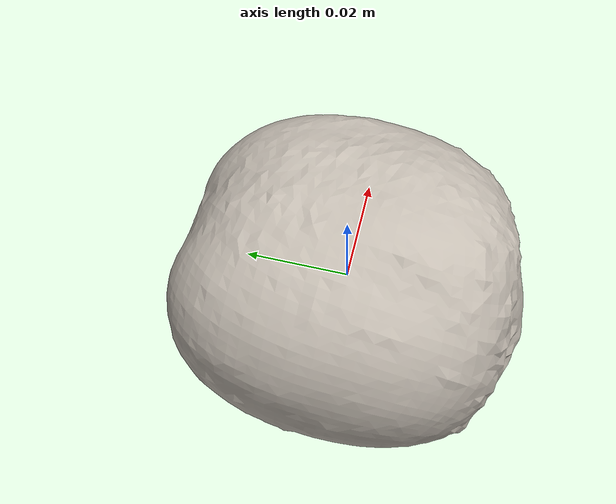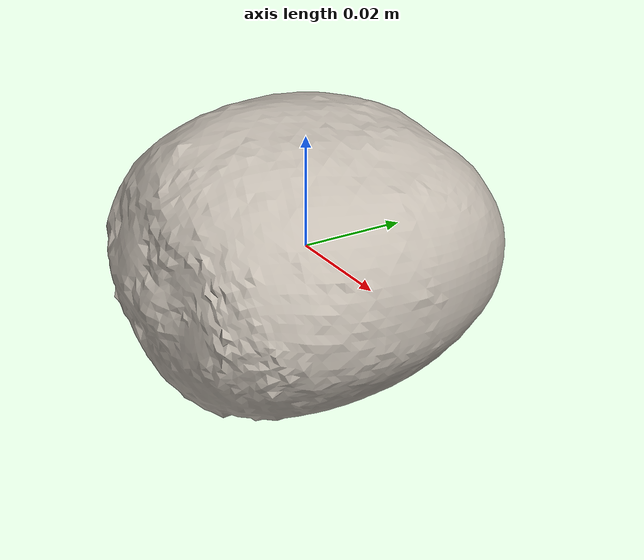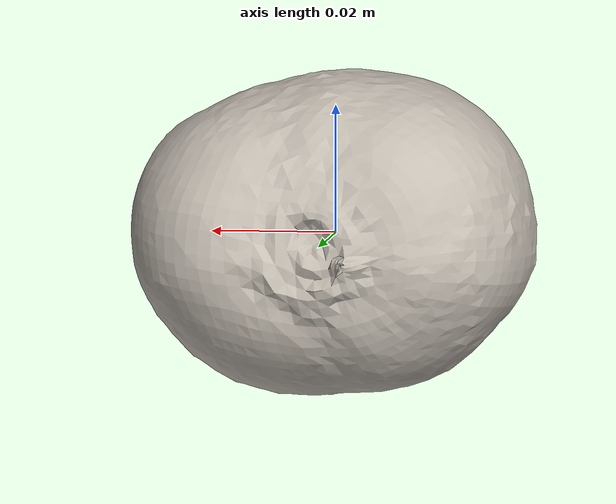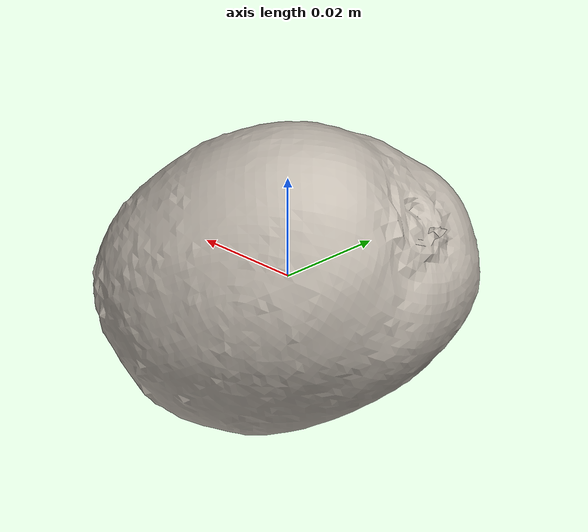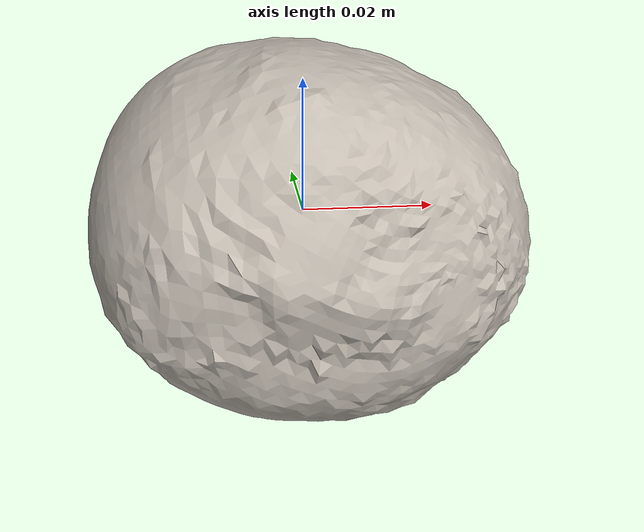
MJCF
<mujoco model="kiwi_5">
  <asset>
    <mesh file="visual/model_normalized_0.obj" name="model_normalized_0_vis" scale="0.0675 0.0675 0.0675" refquat="0.4999999999999999 0.4999999999999999 0.49999999999999994 0.5"/>
    <mesh file="collision/model_normalized_collision_22.obj" name="model_normalized_collision_22._coll" scale="0.0675 0.0675 0.0675" refquat="0.4999999999999999 0.4999999999999999 0.49999999999999994 0.5"/>
    <mesh file="collision/model_normalized_collision_23.obj" name="model_normalized_collision_23._coll" scale="0.0675 0.0675 0.0675" refquat="0.4999999999999999 0.4999999999999999 0.49999999999999994 0.5"/>
    <mesh file="collision/model_normalized_collision_21.obj" name="model_normalized_collision_21._coll" scale="0.0675 0.0675 0.0675" refquat="0.4999999999999999 0.4999999999999999 0.49999999999999994 0.5"/>
    <mesh file="collision/model_normalized_collision_20.obj" name="model_normalized_collision_20._coll" scale="0.0675 0.0675 0.0675" refquat="0.4999999999999999 0.4999999999999999 0.49999999999999994 0.5"/>
    <mesh file="collision/model_normalized_collision_24.obj" name="model_normalized_collision_24._coll" scale="0.0675 0.0675 0.0675" refquat="0.4999999999999999 0.4999999999999999 0.49999999999999994 0.5"/>
    <mesh file="collision/model_normalized_collision_30.obj" name="model_normalized_collision_30._coll" scale="0.0675 0.0675 0.0675" refquat="0.4999999999999999 0.4999999999999999 0.49999999999999994 0.5"/>
    <mesh file="collision/model_normalized_collision_18.obj" name="model_normalized_collision_18._coll" scale="0.0675 0.0675 0.0675" refquat="0.4999999999999999 0.4999999999999999 0.49999999999999994 0.5"/>
    <mesh file="collision/model_normalized_collision_19.obj" name="model_normalized_collision_19._coll" scale="0.0675 0.0675 0.0675" refquat="0.4999999999999999 0.4999999999999999 0.49999999999999994 0.5"/>
    <mesh file="collision/model_normalized_collision_31.obj" name="model_normalized_collision_31._coll" scale="0.0675 0.0675 0.0675" refquat="0.4999999999999999 0.4999999999999999 0.49999999999999994 0.5"/>
    <mesh file="collision/model_normalized_collision_25.obj" name="model_normalized_collision_25._coll" scale="0.0675 0.0675 0.0675" refquat="0.4999999999999999 0.4999999999999999 0.49999999999999994 0.5"/>
    <mesh file="collision/model_normalized_collision_27.obj" name="model_normalized_collision_27._coll" scale="0.0675 0.0675 0.0675" refquat="0.4999999999999999 0.4999999999999999 0.49999999999999994 0.5"/>
    <mesh file="collision/model_normalized_collision_26.obj" name="model_normalized_collision_26._coll" scale="0.0675 0.0675 0.0675" refquat="0.4999999999999999 0.4999999999999999 0.49999999999999994 0.5"/>
    <mesh file="collision/model_normalized_collision_9.obj" name="model_normalized_collision_9._coll" scale="0.0675 0.0675 0.0675" refquat="0.4999999999999999 0.4999999999999999 0.49999999999999994 0.5"/>
    <mesh file="collision/model_normalized_collision_8.obj" name="model_normalized_collision_8._coll" scale="0.0675 0.0675 0.0675" refquat="0.4999999999999999 0.4999999999999999 0.49999999999999994 0.5"/>
    <mesh file="collision/model_normalized_collision_6.obj" name="model_normalized_collision_6._coll" scale="0.0675 0.0675 0.0675" refquat="0.4999999999999999 0.4999999999999999 0.49999999999999994 0.5"/>
    <mesh file="collision/model_normalized_collision_7.obj" name="model_normalized_collision_7._coll" scale="0.0675 0.0675 0.0675" refquat="0.4999999999999999 0.4999999999999999 0.49999999999999994 0.5"/>
    <mesh file="collision/model_normalized_collision_5.obj" name="model_normalized_collision_5._coll" scale="0.0675 0.0675 0.0675" refquat="0.4999999999999999 0.4999999999999999 0.49999999999999994 0.5"/>
    <mesh file="collision/model_normalized_collision_4.obj" name="model_normalized_collision_4._coll" scale="0.0675 0.0675 0.0675" refquat="0.4999999999999999 0.4999999999999999 0.49999999999999994 0.5"/>
    <mesh file="collision/model_normalized_collision_0.obj" name="model_normalized_collision_0._coll" scale="0.0675 0.0675 0.0675" refquat="0.4999999999999999 0.4999999999999999 0.49999999999999994 0.5"/>
    <mesh file="collision/model_normalized_collision_1.obj" name="model_normalized_collision_1._coll" scale="0.0675 0.0675 0.0675" refquat="0.4999999999999999 0.4999999999999999 0.49999999999999994 0.5"/>
    <mesh file="collision/model_normalized_collision_3.obj" name="model_normalized_collision_3._coll" scale="0.0675 0.0675 0.0675" refquat="0.4999999999999999 0.4999999999999999 0.49999999999999994 0.5"/>
    <mesh file="collision/model_normalized_collision_2.obj" name="model_normalized_collision_2._coll" scale="0.0675 0.0675 0.0675" refquat="0.4999999999999999 0.4999999999999999 0.49999999999999994 0.5"/>
    <mesh file="collision/model_normalized_collision_17.obj" name="model_normalized_collision_17._coll" scale="0.0675 0.0675 0.0675" refquat="0.4999999999999999 0.4999999999999999 0.49999999999999994 0.5"/>
    <mesh file="collision/model_normalized_collision_16.obj" name="model_normalized_collision_16._coll" scale="0.0675 0.0675 0.0675" refquat="0.4999999999999999 0.4999999999999999 0.49999999999999994 0.5"/>
    <mesh file="collision/model_normalized_collision_28.obj" name="model_normalized_collision_28._coll" scale="0.0675 0.0675 0.0675" refquat="0.4999999999999999 0.4999999999999999 0.49999999999999994 0.5"/>
    <mesh file="collision/model_normalized_collision_14.obj" name="model_normalized_collision_14._coll" scale="0.0675 0.0675 0.0675" refquat="0.4999999999999999 0.4999999999999999 0.49999999999999994 0.5"/>
    <mesh file="collision/model_normalized_collision_15.obj" name="model_normalized_collision_15._coll" scale="0.0675 0.0675 0.0675" refquat="0.4999999999999999 0.4999999999999999 0.49999999999999994 0.5"/>
    <mesh file="collision/model_normalized_collision_29.obj" name="model_normalized_collision_29._coll" scale="0.0675 0.0675 0.0675" refquat="0.4999999999999999 0.4999999999999999 0.49999999999999994 0.5"/>
    <mesh file="collision/model_normalized_collision_11.obj" name="model_normalized_collision_11._coll" scale="0.0675 0.0675 0.0675" refquat="0.4999999999999999 0.4999999999999999 0.49999999999999994 0.5"/>
    <mesh file="collision/model_normalized_collision_10.obj" name="model_normalized_collision_10._coll" scale="0.0675 0.0675 0.0675" refquat="0.4999999999999999 0.4999999999999999 0.49999999999999994 0.5"/>
    <mesh file="collision/model_normalized_collision_12.obj" name="model_normalized_collision_12._coll" scale="0.0675 0.0675 0.0675" refquat="0.4999999999999999 0.4999999999999999 0.49999999999999994 0.5"/>
    <mesh file="collision/model_normalized_collision_13.obj" name="model_normalized_collision_13._coll" scale="0.0675 0.0675 0.0675" refquat="0.4999999999999999 0.4999999999999999 0.49999999999999994 0.5"/>
    <texture type="2d" name="image0" file="visual/image0.png"/>
    <material name="material_0.083" texture="image0" specular="0.5" shininess="0.25"/>
  </asset>
  <worldbody>
  <body>
      <body name="object">
        <geom solimp="0.998 0.998 0.001" solref="0.001 1" density="100" friction="0.95 0.3 0.1" type="mesh" mesh="model_normalized_0_vis" conaffinity="0" contype="0" group="1" material="material_0.083"/>
        <geom solimp="0.998 0.998 0.001" solref="0.001 1" density="100" friction="0.95 0.3 0.1" type="mesh" mesh="model_normalized_collision_22._coll" group="0" rgba="0.8 0.8 0.8 0.0"/>
        <geom solimp="0.998 0.998 0.001" solref="0.001 1" density="100" friction="0.95 0.3 0.1" type="mesh" mesh="model_normalized_collision_23._coll" group="0" rgba="0.8 0.8 0.8 0.0"/>
        <geom solimp="0.998 0.998 0.001" solref="0.001 1" density="100" friction="0.95 0.3 0.1" type="mesh" mesh="model_normalized_collision_21._coll" group="0" rgba="0.8 0.8 0.8 0.0"/>
        <geom solimp="0.998 0.998 0.001" solref="0.001 1" density="100" friction="0.95 0.3 0.1" type="mesh" mesh="model_normalized_collision_20._coll" group="0" rgba="0.8 0.8 0.8 0.0"/>
        <geom solimp="0.998 0.998 0.001" solref="0.001 1" density="100" friction="0.95 0.3 0.1" type="mesh" mesh="model_normalized_collision_24._coll" group="0" rgba="0.8 0.8 0.8 0.0"/>
        <geom solimp="0.998 0.998 0.001" solref="0.001 1" density="100" friction="0.95 0.3 0.1" type="mesh" mesh="model_normalized_collision_30._coll" group="0" rgba="0.8 0.8 0.8 0.0"/>
        <geom solimp="0.998 0.998 0.001" solref="0.001 1" density="100" friction="0.95 0.3 0.1" type="mesh" mesh="model_normalized_collision_18._coll" group="0" rgba="0.8 0.8 0.8 0.0"/>
        <geom solimp="0.998 0.998 0.001" solref="0.001 1" density="100" friction="0.95 0.3 0.1" type="mesh" mesh="model_normalized_collision_19._coll" group="0" rgba="0.8 0.8 0.8 0.0"/>
        <geom solimp="0.998 0.998 0.001" solref="0.001 1" density="100" friction="0.95 0.3 0.1" type="mesh" mesh="model_normalized_collision_31._coll" group="0" rgba="0.8 0.8 0.8 0.0"/>
        <geom solimp="0.998 0.998 0.001" solref="0.001 1" density="100" friction="0.95 0.3 0.1" type="mesh" mesh="model_normalized_collision_25._coll" group="0" rgba="0.8 0.8 0.8 0.0"/>
        <geom solimp="0.998 0.998 0.001" solref="0.001 1" density="100" friction="0.95 0.3 0.1" type="mesh" mesh="model_normalized_collision_27._coll" group="0" rgba="0.8 0.8 0.8 0.0"/>
        <geom solimp="0.998 0.998 0.001" solref="0.001 1" density="100" friction="0.95 0.3 0.1" type="mesh" mesh="model_normalized_collision_26._coll" group="0" rgba="0.8 0.8 0.8 0.0"/>
        <geom solimp="0.998 0.998 0.001" solref="0.001 1" density="100" friction="0.95 0.3 0.1" type="mesh" mesh="model_normalized_collision_9._coll" group="0" rgba="0.8 0.8 0.8 0.0"/>
        <geom solimp="0.998 0.998 0.001" solref="0.001 1" density="100" friction="0.95 0.3 0.1" type="mesh" mesh="model_normalized_collision_8._coll" group="0" rgba="0.8 0.8 0.8 0.0"/>
        <geom solimp="0.998 0.998 0.001" solref="0.001 1" density="100" friction="0.95 0.3 0.1" type="mesh" mesh="model_normalized_collision_6._coll" group="0" rgba="0.8 0.8 0.8 0.0"/>
        <geom solimp="0.998 0.998 0.001" solref="0.001 1" density="100" friction="0.95 0.3 0.1" type="mesh" mesh="model_normalized_collision_7._coll" group="0" rgba="0.8 0.8 0.8 0.0"/>
        <geom solimp="0.998 0.998 0.001" solref="0.001 1" density="100" friction="0.95 0.3 0.1" type="mesh" mesh="model_normalized_collision_5._coll" group="0" rgba="0.8 0.8 0.8 0.0"/>
        <geom solimp="0.998 0.998 0.001" solref="0.001 1" density="100" friction="0.95 0.3 0.1" type="mesh" mesh="model_normalized_collision_4._coll" group="0" rgba="0.8 0.8 0.8 0.0"/>
        <geom solimp="0.998 0.998 0.001" solref="0.001 1" density="100" friction="0.95 0.3 0.1" type="mesh" mesh="model_normalized_collision_0._coll" group="0" rgba="0.8 0.8 0.8 0.0"/>
        <geom solimp="0.998 0.998 0.001" solref="0.001 1" density="100" friction="0.95 0.3 0.1" type="mesh" mesh="model_normalized_collision_1._coll" group="0" rgba="0.8 0.8 0.8 0.0"/>
        <geom solimp="0.998 0.998 0.001" solref="0.001 1" density="100" friction="0.95 0.3 0.1" type="mesh" mesh="model_normalized_collision_3._coll" group="0" rgba="0.8 0.8 0.8 0.0"/>
        <geom solimp="0.998 0.998 0.001" solref="0.001 1" density="100" friction="0.95 0.3 0.1" type="mesh" mesh="model_normalized_collision_2._coll" group="0" rgba="0.8 0.8 0.8 0.0"/>
        <geom solimp="0.998 0.998 0.001" solref="0.001 1" density="100" friction="0.95 0.3 0.1" type="mesh" mesh="model_normalized_collision_17._coll" group="0" rgba="0.8 0.8 0.8 0.0"/>
        <geom solimp="0.998 0.998 0.001" solref="0.001 1" density="100" friction="0.95 0.3 0.1" type="mesh" mesh="model_normalized_collision_16._coll" group="0" rgba="0.8 0.8 0.8 0.0"/>
        <geom solimp="0.998 0.998 0.001" solref="0.001 1" density="100" friction="0.95 0.3 0.1" type="mesh" mesh="model_normalized_collision_28._coll" group="0" rgba="0.8 0.8 0.8 0.0"/>
        <geom solimp="0.998 0.998 0.001" solref="0.001 1" density="100" friction="0.95 0.3 0.1" type="mesh" mesh="model_normalized_collision_14._coll" group="0" rgba="0.8 0.8 0.8 0.0"/>
        <geom solimp="0.998 0.998 0.001" solref="0.001 1" density="100" friction="0.95 0.3 0.1" type="mesh" mesh="model_normalized_collision_15._coll" group="0" rgba="0.8 0.8 0.8 0.0"/>
        <geom solimp="0.998 0.998 0.001" solref="0.001 1" density="100" friction="0.95 0.3 0.1" type="mesh" mesh="model_normalized_collision_29._coll" group="0" rgba="0.8 0.8 0.8 0.0"/>
        <geom solimp="0.998 0.998 0.001" solref="0.001 1" density="100" friction="0.95 0.3 0.1" type="mesh" mesh="model_normalized_collision_11._coll" group="0" rgba="0.8 0.8 0.8 0.0"/>
        <geom solimp="0.998 0.998 0.001" solref="0.001 1" density="100" friction="0.95 0.3 0.1" type="mesh" mesh="model_normalized_collision_10._coll" group="0" rgba="0.8 0.8 0.8 0.0"/>
        <geom solimp="0.998 0.998 0.001" solref="0.001 1" density="100" friction="0.95 0.3 0.1" type="mesh" mesh="model_normalized_collision_12._coll" group="0" rgba="0.8 0.8 0.8 0.0"/>
        <geom solimp="0.998 0.998 0.001" solref="0.001 1" density="100" friction="0.95 0.3 0.1" type="mesh" mesh="model_normalized_collision_13._coll" group="0" rgba="0.8 0.8 0.8 0.0"/>
      </body>
      <site rgba="0 0 0 0" size="0.005" pos="1.9847027464837406e-05 0.0003043581120420693 -0.02625673239528641" name="bottom_site"/>
      <site rgba="0 0 0 0" size="0.005" pos="1.9847027464837406e-05 0.0003043581120420693 0.025616328073419056" name="top_site"/>
      <site rgba="0 0 0 0" size="0.005" pos="0.03172344139102019 0.03499999694322969 -0.0003202021609336769" name="horizontal_radius_site"/>
    </body>
    </worldbody>
</mujoco>
